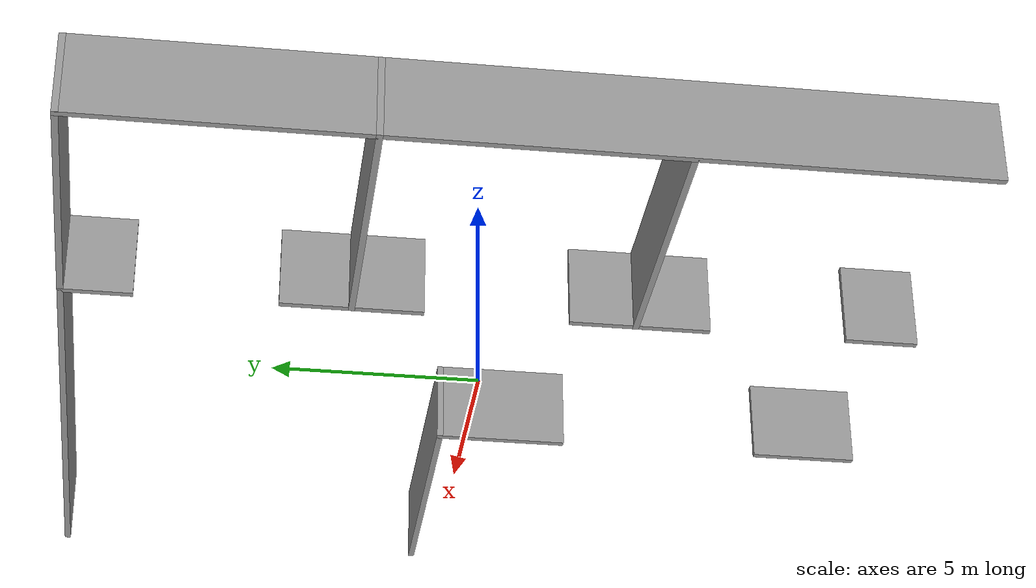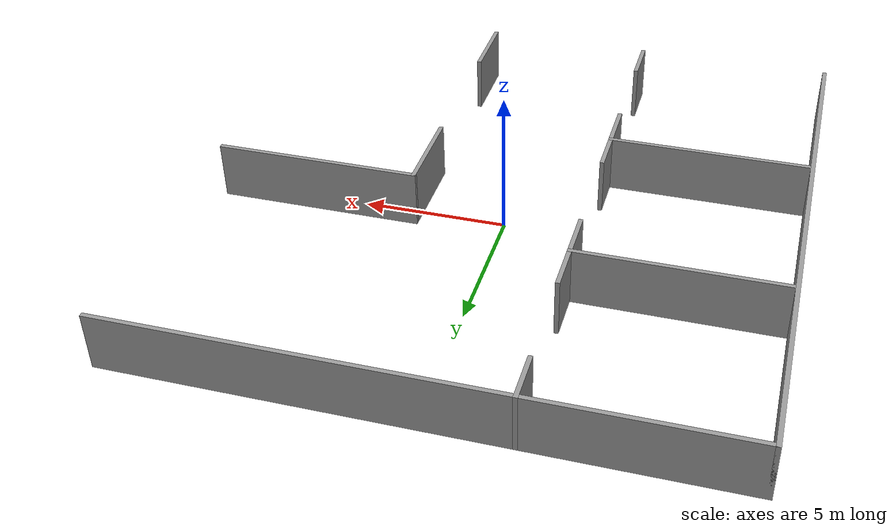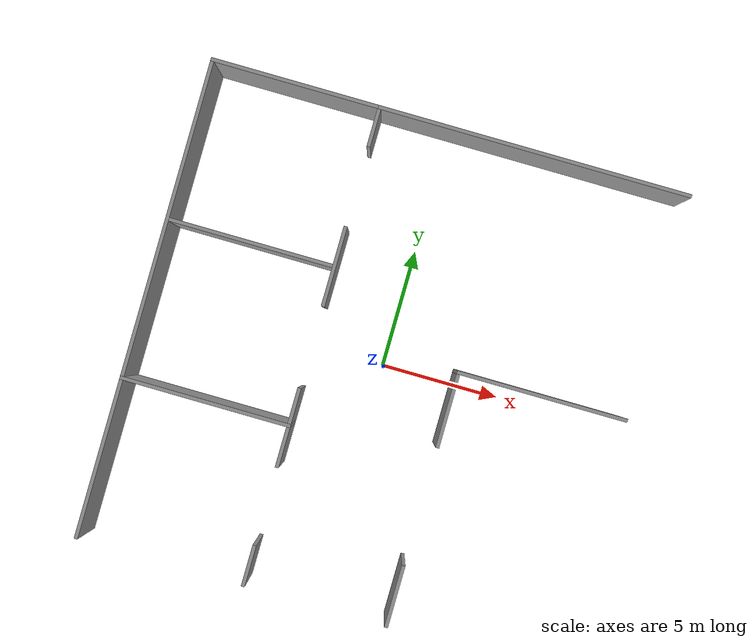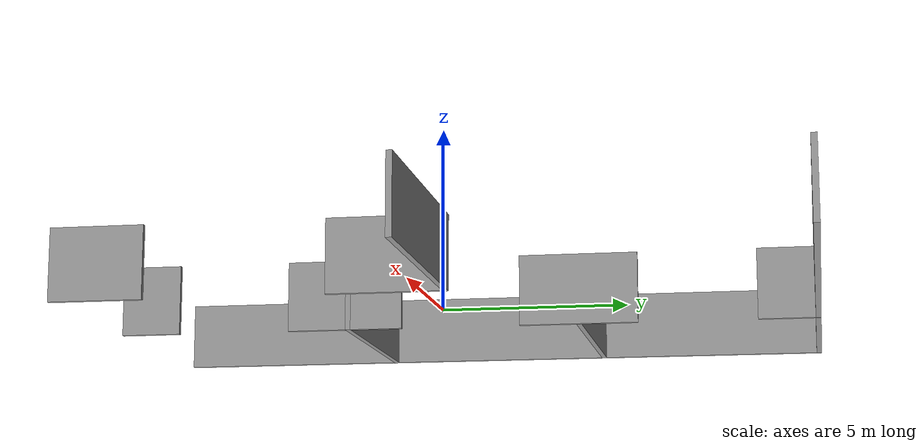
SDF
<?xml version='1.0'?>
<sdf version='1.6'>
  <model name='final_wall'>
    <pose frame=''>0 0 0 0 -0 0</pose>
    <link name='Wall_11'>
      <collision name='Wall_11_Collision'>
        <geometry>
          <box>
            <size>7.15 0.15 2</size>
          </box>
        </geometry>
        <pose frame=''>0 0 1 0 -0 0</pose>
      </collision>
      <visual name='Wall_11_Visual'>
        <pose frame=''>0 0 1 0 -0 0</pose>
        <geometry>
          <box>
            <size>7.15 0.15 2</size>
          </box>
        </geometry>
        <material>
          <script>
            <uri>file://media/materials/scripts/gazebo.material</uri>
            <name>Gazebo/Grey</name>
          </script>
          <ambient>1 1 1 1</ambient>
        </material>
        <meta>
          <layer>0</layer>
        </meta>
      </visual>
      <pose frame=''>-6.5 -3.333 0 0 -0 0</pose>
    </link>
    <link name='Wall_15'>
      <collision name='Wall_15_Collision'>
        <geometry>
          <box>
            <size>7.15 0.15 2</size>
          </box>
        </geometry>
        <pose frame=''>0 0 1 0 -0 0</pose>
      </collision>
      <visual name='Wall_15_Visual'>
        <pose frame=''>0 0 1 0 -0 0</pose>
        <geometry>
          <box>
            <size>7.15 0.15 2</size>
          </box>
        </geometry>
        <material>
          <script>
            <uri>file://media/materials/scripts/gazebo.material</uri>
            <name>Gazebo/Grey</name>
          </script>
          <ambient>1 1 1 1</ambient>
        </material>
        <meta>
          <layer>0</layer>
        </meta>
      </visual>
      <pose frame=''>6.5 0.6 0 0 -0 3.14159</pose>
    </link>
    <link name='Wall_17'>
      <pose frame=''>3 -4.7 0 0 -0 -1.5708</pose>
      <visual name='Wall_17_Visual_0'>
        <pose frame=''>-3.76068 0 1 0 -0 0</pose>
        <geometry>
          <box>
            <size>3.22865 0.15 2</size>
          </box>
        </geometry>
        <material>
          <script>
            <uri>file://media/materials/scripts/gazebo.material</uri>
            <name>Gazebo/Grey</name>
          </script>
          <ambient>1 1 1 1</ambient>
        </material>
        <meta>
          <layer>0</layer>
        </meta>
      </visual>
      <collision name='Wall_17_Collision_0'>
        <geometry>
          <box>
            <size>3.22865 0.15 2</size>
          </box>
        </geometry>
        <pose frame=''>-3.76068 0 1 0 -0 0</pose>
      </collision>
      <visual name='Wall_17_Visual_1'>
        <pose frame=''>4.08171 0 1 0 -0 0</pose>
        <geometry>
          <box>
            <size>2.58657 0.15 2</size>
          </box>
        </geometry>
        <material>
          <script>
            <uri>file://media/materials/scripts/gazebo.material</uri>
            <name>Gazebo/Grey</name>
          </script>
          <ambient>1 1 1 1</ambient>
        </material>
        <meta>
          <layer>0</layer>
        </meta>
      </visual>
      <collision name='Wall_17_Collision_1'>
        <geometry>
          <box>
            <size>2.58657 0.15 2</size>
          </box>
        </geometry>
        <pose frame=''>4.08171 0 1 0 -0 0</pose>
      </collision>
    </link>
    <link name='Wall_3'>
      <collision name='Wall_3_Collision'>
        <geometry>
          <box>
            <size>20.15 0.15 2</size>
          </box>
        </geometry>
        <pose frame=''>0 0 1 0 -0 0</pose>
      </collision>
      <visual name='Wall_3_Visual'>
        <pose frame=''>0 0 1 0 -0 0</pose>
        <geometry>
          <box>
            <size>20.15 0.15 2</size>
          </box>
        </geometry>
        <material>
          <script>
            <uri>file://media/materials/scripts/gazebo.material</uri>
            <name>Gazebo/Grey</name>
          </script>
          <ambient>1 1 1 1</ambient>
        </material>
        <meta>
          <layer>0</layer>
        </meta>
      </visual>
      <pose frame=''>0 10 0 0 -0 0</pose>
    </link>
    <link name='Wall_5'>
      <collision name='Wall_5_Collision'>
        <geometry>
          <box>
            <size>20.15 0.15 2</size>
          </box>
        </geometry>
        <pose frame=''>0 0 1 0 -0 0</pose>
      </collision>
      <visual name='Wall_5_Visual'>
        <pose frame=''>0 0 1 0 -0 0</pose>
        <geometry>
          <box>
            <size>20.15 0.15 2</size>
          </box>
        </geometry>
        <material>
          <script>
            <uri>file://media/materials/scripts/gazebo.material</uri>
            <name>Gazebo/Grey</name>
          </script>
          <ambient>1 1 1 1</ambient>
        </material>
        <meta>
          <layer>0</layer>
        </meta>
      </visual>
      <pose frame=''>-10 0 0 0 -0 -1.5708</pose>
    </link>
    <link name='Wall_7'>
      <pose frame=''>-3 0 0 0 -0 -1.5708</pose>
      <visual name='Wall_7_Visual_0'>
        <pose frame=''>-9.21116 0 1 0 -0 0</pose>
        <geometry>
          <box>
            <size>1.72769 0.15 2</size>
          </box>
        </geometry>
        <material>
          <script>
            <uri>file://media/materials/scripts/gazebo.material</uri>
            <name>Gazebo/Grey</name>
          </script>
          <ambient>1 1 1 1</ambient>
        </material>
        <meta>
          <layer>0</layer>
        </meta>
      </visual>
      <collision name='Wall_7_Collision_0'>
        <geometry>
          <box>
            <size>1.72769 0.15 2</size>
          </box>
        </geometry>
        <pose frame=''>-9.21116 0 1 0 -0 0</pose>
      </collision>
      <visual name='Wall_7_Visual_1'>
        <pose frame=''>-3.33151 0 1 0 -0 0</pose>
        <geometry>
          <box>
            <size>3.36274 0.15 2</size>
          </box>
        </geometry>
        <material>
          <script>
            <uri>file://media/materials/scripts/gazebo.material</uri>
            <name>Gazebo/Grey</name>
          </script>
          <ambient>1 1 1 1</ambient>
        </material>
        <meta>
          <layer>0</layer>
        </meta>
      </visual>
      <collision name='Wall_7_Collision_1'>
        <geometry>
          <box>
            <size>3.36274 0.15 2</size>
          </box>
        </geometry>
        <pose frame=''>-3.33151 0 1 0 -0 0</pose>
      </collision>
      <visual name='Wall_7_Visual_2'>
        <pose frame=''>3.42546 0 1 0 -0 0</pose>
        <geometry>
          <box>
            <size>3.3352 0.15 2</size>
          </box>
        </geometry>
        <material>
          <script>
            <uri>file://media/materials/scripts/gazebo.material</uri>
            <name>Gazebo/Grey</name>
          </script>
          <ambient>1 1 1 1</ambient>
        </material>
        <meta>
          <layer>0</layer>
        </meta>
      </visual>
      <collision name='Wall_7_Collision_2'>
        <geometry>
          <box>
            <size>3.3352 0.15 2</size>
          </box>
        </geometry>
        <pose frame=''>3.42546 0 1 0 -0 0</pose>
      </collision>
      <visual name='Wall_7_Visual_3'>
        <pose frame=''>9.21253 0 1 0 -0 0</pose>
        <geometry>
          <box>
            <size>1.72494 0.15 2</size>
          </box>
        </geometry>
        <material>
          <script>
            <uri>file://media/materials/scripts/gazebo.material</uri>
            <name>Gazebo/Grey</name>
          </script>
          <ambient>1 1 1 1</ambient>
        </material>
        <meta>
          <layer>0</layer>
        </meta>
      </visual>
      <collision name='Wall_7_Collision_3'>
        <geometry>
          <box>
            <size>1.72494 0.15 2</size>
          </box>
        </geometry>
        <pose frame=''>9.21253 0 1 0 -0 0</pose>
      </collision>
    </link>
    <link name='Wall_9'>
      <collision name='Wall_9_Collision'>
        <geometry>
          <box>
            <size>7.15 0.15 2</size>
          </box>
        </geometry>
        <pose frame=''>0 0 1 0 -0 0</pose>
      </collision>
      <visual name='Wall_9_Visual'>
        <pose frame=''>0 0 1 0 -0 0</pose>
        <geometry>
          <box>
            <size>7.15 0.15 2</size>
          </box>
        </geometry>
        <material>
          <script>
            <uri>file://media/materials/scripts/gazebo.material</uri>
            <name>Gazebo/Grey</name>
          </script>
          <ambient>1 1 1 1</ambient>
        </material>
        <meta>
          <layer>0</layer>
        </meta>
      </visual>
      <pose frame=''>-6.5 3.333 0 0 -0 0</pose>
    </link>
    <static>1</static>
  </model>
</sdf>
